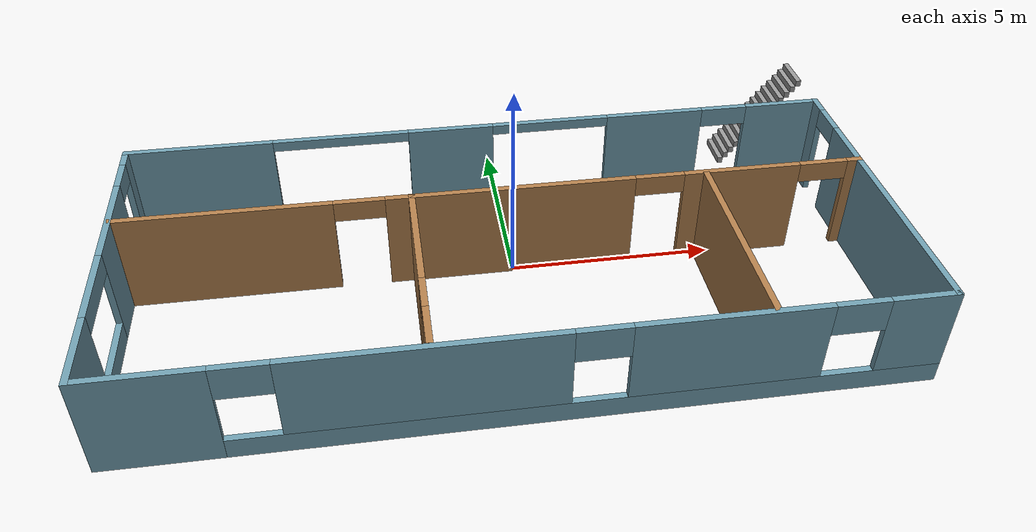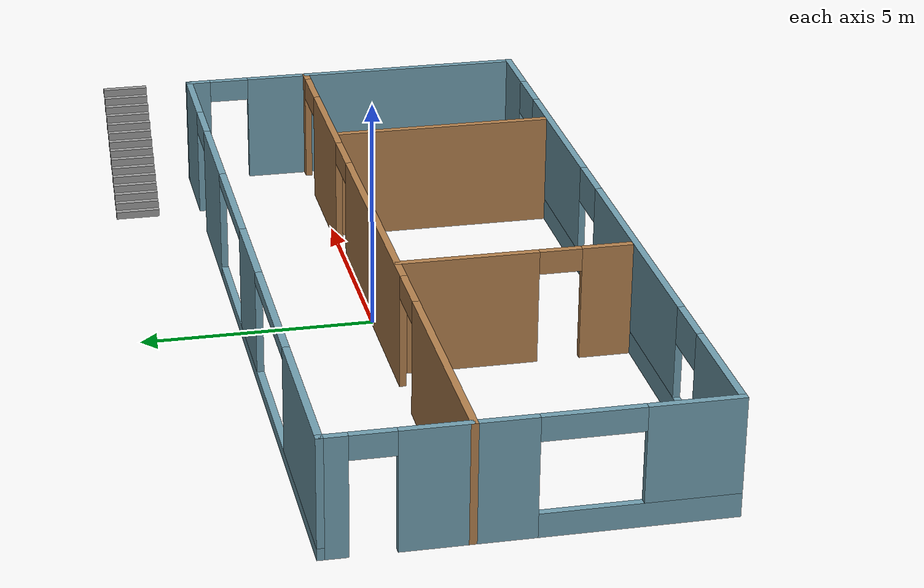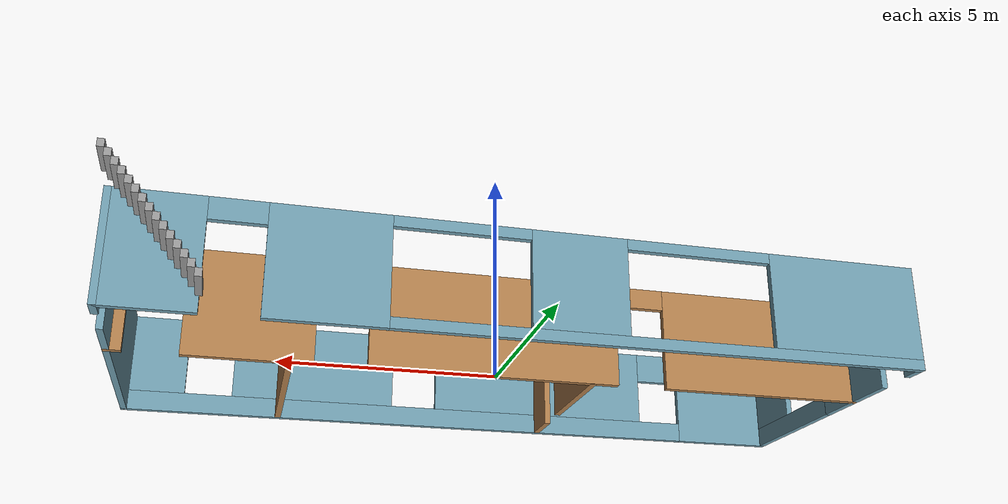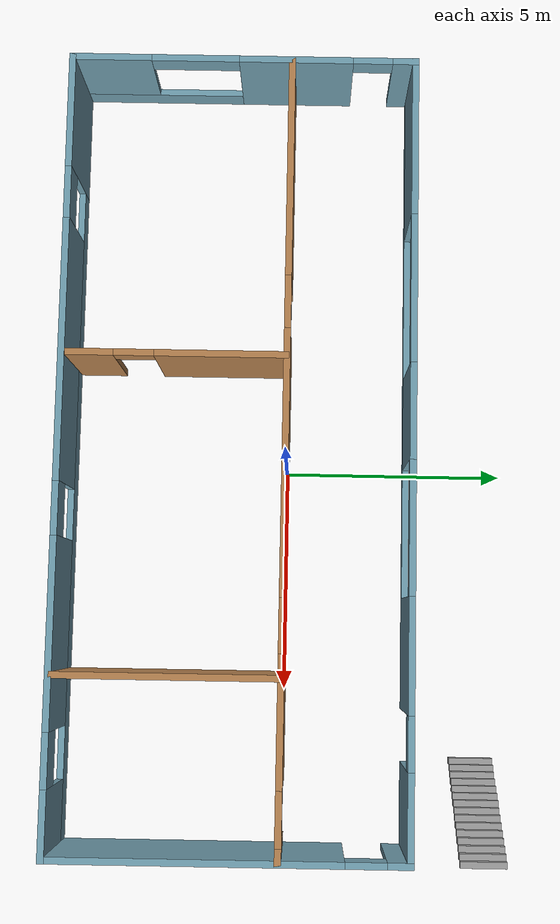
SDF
<?xml version='1.0'?>
<sdf version='1.6'>
  <model name='Marunouchi'>
    <pose frame=''>-0.353592 -0.155703 0 0 -0 0</pose>
    <link name='Stairs_0'>
      <visual name='Stairs_0_Visual_0'>
        <pose frame=''>6.94507 4.48526 0.083333 0 -0 1.5708</pose>
        <geometry>
          <box>
            <size>1 0.137349 0.166667</size>
          </box>
        </geometry>
        <material>
          <script>
            <uri>file://media/materials/scripts/gazebo.material</uri>
            <name>Gazebo/Grey</name>
          </script>
          <ambient>1 1 1 1</ambient>
        </material>
        <meta>
          <layer>0</layer>
        </meta>
      </visual>
      <collision name='Stairs_0_Collision_0'>
        <geometry>
          <box>
            <size>1 0.137349 0.166667</size>
          </box>
        </geometry>
        <pose frame=''>6.94507 4.48526 0.083333 0 -0 1.5708</pose>
      </collision>
      <visual name='Stairs_0_Visual_1'>
        <pose frame=''>7.08242 4.48526 0.25 0 -0 1.5708</pose>
        <geometry>
          <box>
            <size>1 0.137349 0.166667</size>
          </box>
        </geometry>
        <material>
          <script>
            <uri>file://media/materials/scripts/gazebo.material</uri>
            <name>Gazebo/Grey</name>
          </script>
          <ambient>1 1 1 1</ambient>
        </material>
        <meta>
          <layer>0</layer>
        </meta>
      </visual>
      <collision name='Stairs_0_Collision_1'>
        <geometry>
          <box>
            <size>1 0.137349 0.166667</size>
          </box>
        </geometry>
        <pose frame=''>7.08242 4.48526 0.25 0 -0 1.5708</pose>
      </collision>
      <visual name='Stairs_0_Visual_2'>
        <pose frame=''>7.21977 4.48526 0.416667 0 -0 1.5708</pose>
        <geometry>
          <box>
            <size>1 0.137349 0.166667</size>
          </box>
        </geometry>
        <material>
          <script>
            <uri>file://media/materials/scripts/gazebo.material</uri>
            <name>Gazebo/Grey</name>
          </script>
          <ambient>1 1 1 1</ambient>
        </material>
        <meta>
          <layer>0</layer>
        </meta>
      </visual>
      <collision name='Stairs_0_Collision_2'>
        <geometry>
          <box>
            <size>1 0.137349 0.166667</size>
          </box>
        </geometry>
        <pose frame=''>7.21977 4.48526 0.416667 0 -0 1.5708</pose>
      </collision>
      <visual name='Stairs_0_Visual_3'>
        <pose frame=''>7.35712 4.48526 0.583333 0 -0 1.5708</pose>
        <geometry>
          <box>
            <size>1 0.137349 0.166667</size>
          </box>
        </geometry>
        <material>
          <script>
            <uri>file://media/materials/scripts/gazebo.material</uri>
            <name>Gazebo/Grey</name>
          </script>
          <ambient>1 1 1 1</ambient>
        </material>
        <meta>
          <layer>0</layer>
        </meta>
      </visual>
      <collision name='Stairs_0_Collision_3'>
        <geometry>
          <box>
            <size>1 0.137349 0.166667</size>
          </box>
        </geometry>
        <pose frame=''>7.35712 4.48526 0.583333 0 -0 1.5708</pose>
      </collision>
      <visual name='Stairs_0_Visual_4'>
        <pose frame=''>7.49447 4.48526 0.75 0 -0 1.5708</pose>
        <geometry>
          <box>
            <size>1 0.137349 0.166667</size>
          </box>
        </geometry>
        <material>
          <script>
            <uri>file://media/materials/scripts/gazebo.material</uri>
            <name>Gazebo/Grey</name>
          </script>
          <ambient>1 1 1 1</ambient>
        </material>
        <meta>
          <layer>0</layer>
        </meta>
      </visual>
      <collision name='Stairs_0_Collision_4'>
        <geometry>
          <box>
            <size>1 0.137349 0.166667</size>
          </box>
        </geometry>
        <pose frame=''>7.49447 4.48526 0.75 0 -0 1.5708</pose>
      </collision>
      <visual name='Stairs_0_Visual_5'>
        <pose frame=''>7.63182 4.48526 0.916667 0 -0 1.5708</pose>
        <geometry>
          <box>
            <size>1 0.137349 0.166667</size>
          </box>
        </geometry>
        <material>
          <script>
            <uri>file://media/materials/scripts/gazebo.material</uri>
            <name>Gazebo/Grey</name>
          </script>
          <ambient>1 1 1 1</ambient>
        </material>
        <meta>
          <layer>0</layer>
        </meta>
      </visual>
      <collision name='Stairs_0_Collision_5'>
        <geometry>
          <box>
            <size>1 0.137349 0.166667</size>
          </box>
        </geometry>
        <pose frame=''>7.63182 4.48526 0.916667 0 -0 1.5708</pose>
      </collision>
      <visual name='Stairs_0_Visual_6'>
        <pose frame=''>7.76917 4.48526 1.08333 0 -0 1.5708</pose>
        <geometry>
          <box>
            <size>1 0.137349 0.166667</size>
          </box>
        </geometry>
        <material>
          <script>
            <uri>file://media/materials/scripts/gazebo.material</uri>
            <name>Gazebo/Grey</name>
          </script>
          <ambient>1 1 1 1</ambient>
        </material>
        <meta>
          <layer>0</layer>
        </meta>
      </visual>
      <collision name='Stairs_0_Collision_6'>
        <geometry>
          <box>
            <size>1 0.137349 0.166667</size>
          </box>
        </geometry>
        <pose frame=''>7.76917 4.48526 1.08333 0 -0 1.5708</pose>
      </collision>
      <visual name='Stairs_0_Visual_7'>
        <pose frame=''>7.90652 4.48526 1.25 0 -0 1.5708</pose>
        <geometry>
          <box>
            <size>1 0.137349 0.166667</size>
          </box>
        </geometry>
        <material>
          <script>
            <uri>file://media/materials/scripts/gazebo.material</uri>
            <name>Gazebo/Grey</name>
          </script>
          <ambient>1 1 1 1</ambient>
        </material>
        <meta>
          <layer>0</layer>
        </meta>
      </visual>
      <collision name='Stairs_0_Collision_7'>
        <geometry>
          <box>
            <size>1 0.137349 0.166667</size>
          </box>
        </geometry>
        <pose frame=''>7.90652 4.48526 1.25 0 -0 1.5708</pose>
      </collision>
      <visual name='Stairs_0_Visual_8'>
        <pose frame=''>8.04387 4.48526 1.41667 0 -0 1.5708</pose>
        <geometry>
          <box>
            <size>1 0.137349 0.166667</size>
          </box>
        </geometry>
        <material>
          <script>
            <uri>file://media/materials/scripts/gazebo.material</uri>
            <name>Gazebo/Grey</name>
          </script>
          <ambient>1 1 1 1</ambient>
        </material>
        <meta>
          <layer>0</layer>
        </meta>
      </visual>
      <collision name='Stairs_0_Collision_8'>
        <geometry>
          <box>
            <size>1 0.137349 0.166667</size>
          </box>
        </geometry>
        <pose frame=''>8.04387 4.48526 1.41667 0 -0 1.5708</pose>
      </collision>
      <visual name='Stairs_0_Visual_9'>
        <pose frame=''>8.18122 4.48526 1.58333 0 -0 1.5708</pose>
        <geometry>
          <box>
            <size>1 0.137349 0.166667</size>
          </box>
        </geometry>
        <material>
          <script>
            <uri>file://media/materials/scripts/gazebo.material</uri>
            <name>Gazebo/Grey</name>
          </script>
          <ambient>1 1 1 1</ambient>
        </material>
        <meta>
          <layer>0</layer>
        </meta>
      </visual>
      <collision name='Stairs_0_Collision_9'>
        <geometry>
          <box>
            <size>1 0.137349 0.166667</size>
          </box>
        </geometry>
        <pose frame=''>8.18122 4.48526 1.58333 0 -0 1.5708</pose>
      </collision>
      <visual name='Stairs_0_Visual_10'>
        <pose frame=''>8.31856 4.48526 1.75 0 -0 1.5708</pose>
        <geometry>
          <box>
            <size>1 0.137349 0.166667</size>
          </box>
        </geometry>
        <material>
          <script>
            <uri>file://media/materials/scripts/gazebo.material</uri>
            <name>Gazebo/Grey</name>
          </script>
          <ambient>1 1 1 1</ambient>
        </material>
        <meta>
          <layer>0</layer>
        </meta>
      </visual>
      <collision name='Stairs_0_Collision_10'>
        <geometry>
          <box>
            <size>1 0.137349 0.166667</size>
          </box>
        </geometry>
        <pose frame=''>8.31856 4.48526 1.75 0 -0 1.5708</pose>
      </collision>
      <visual name='Stairs_0_Visual_11'>
        <pose frame=''>8.45591 4.48526 1.91667 0 -0 1.5708</pose>
        <geometry>
          <box>
            <size>1 0.137349 0.166667</size>
          </box>
        </geometry>
        <material>
          <script>
            <uri>file://media/materials/scripts/gazebo.material</uri>
            <name>Gazebo/Grey</name>
          </script>
          <ambient>1 1 1 1</ambient>
        </material>
        <meta>
          <layer>0</layer>
        </meta>
      </visual>
      <collision name='Stairs_0_Collision_11'>
        <geometry>
          <box>
            <size>1 0.137349 0.166667</size>
          </box>
        </geometry>
        <pose frame=''>8.45591 4.48526 1.91667 0 -0 1.5708</pose>
      </collision>
      <visual name='Stairs_0_Visual_12'>
        <pose frame=''>8.59326 4.48526 2.08333 0 -0 1.5708</pose>
        <geometry>
          <box>
            <size>1 0.137349 0.166667</size>
          </box>
        </geometry>
        <material>
          <script>
            <uri>file://media/materials/scripts/gazebo.material</uri>
            <name>Gazebo/Grey</name>
          </script>
          <ambient>1 1 1 1</ambient>
        </material>
        <meta>
          <layer>0</layer>
        </meta>
      </visual>
      <collision name='Stairs_0_Collision_12'>
        <geometry>
          <box>
            <size>1 0.137349 0.166667</size>
          </box>
        </geometry>
        <pose frame=''>8.59326 4.48526 2.08333 0 -0 1.5708</pose>
      </collision>
      <visual name='Stairs_0_Visual_13'>
        <pose frame=''>8.73061 4.48526 2.25 0 -0 1.5708</pose>
        <geometry>
          <box>
            <size>1 0.137349 0.166667</size>
          </box>
        </geometry>
        <material>
          <script>
            <uri>file://media/materials/scripts/gazebo.material</uri>
            <name>Gazebo/Grey</name>
          </script>
          <ambient>1 1 1 1</ambient>
        </material>
        <meta>
          <layer>0</layer>
        </meta>
      </visual>
      <collision name='Stairs_0_Collision_13'>
        <geometry>
          <box>
            <size>1 0.137349 0.166667</size>
          </box>
        </geometry>
        <pose frame=''>8.73061 4.48526 2.25 0 -0 1.5708</pose>
      </collision>
      <visual name='Stairs_0_Visual_14'>
        <pose frame=''>8.86796 4.48526 2.41667 0 -0 1.5708</pose>
        <geometry>
          <box>
            <size>1 0.137349 0.166667</size>
          </box>
        </geometry>
        <material>
          <script>
            <uri>file://media/materials/scripts/gazebo.material</uri>
            <name>Gazebo/Grey</name>
          </script>
          <ambient>1 1 1 1</ambient>
        </material>
        <meta>
          <layer>0</layer>
        </meta>
      </visual>
      <collision name='Stairs_0_Collision_14'>
        <geometry>
          <box>
            <size>1 0.137349 0.166667</size>
          </box>
        </geometry>
        <pose frame=''>8.86796 4.48526 2.41667 0 -0 1.5708</pose>
      </collision>
    </link>
    <link name='Wall_10'>
      <pose frame=''>0 -4.91026 0 0 -0 0</pose>
      <visual name='Wall_10_Visual_0'>
        <pose frame=''>-7.66287 0 1.25 0 -0 0</pose>
        <geometry>
          <box>
            <size>2.67426 0.15 2.5</size>
          </box>
        </geometry>
        <material>
          <script>
            <uri>file://media/materials/scripts/gazebo.material</uri>
            <name>Gazebo/Grey</name>
          </script>
          <ambient>0.439216 0.619608 0.686275 1</ambient>
        </material>
        <meta>
          <layer>0</layer>
        </meta>
      </visual>
      <collision name='Wall_10_Collision_0'>
        <geometry>
          <box>
            <size>2.67426 0.15 2.5</size>
          </box>
        </geometry>
        <pose frame=''>-7.66287 0 1.25 0 -0 0</pose>
      </collision>
      <visual name='Wall_10_Visual_1'>
        <pose frame=''>1.33713 0 0.25 0 -0 0</pose>
        <geometry>
          <box>
            <size>15.3257 0.15 0.5</size>
          </box>
        </geometry>
        <material>
          <script>
            <uri>file://media/materials/scripts/gazebo.material</uri>
            <name>Gazebo/Grey</name>
          </script>
          <ambient>0.439216 0.619608 0.686275 1</ambient>
        </material>
        <meta>
          <layer>0</layer>
        </meta>
      </visual>
      <collision name='Wall_10_Collision_1'>
        <geometry>
          <box>
            <size>15.3257 0.15 0.5</size>
          </box>
        </geometry>
        <pose frame=''>1.33713 0 0.25 0 -0 0</pose>
      </collision>
      <visual name='Wall_10_Visual_2'>
        <pose frame=''>-2.14617 0 1.5 0 -0 0</pose>
        <geometry>
          <box>
            <size>5.95913 0.15 2</size>
          </box>
        </geometry>
        <material>
          <script>
            <uri>file://media/materials/scripts/gazebo.material</uri>
            <name>Gazebo/Grey</name>
          </script>
          <ambient>0.439216 0.619608 0.686275 1</ambient>
        </material>
        <meta>
          <layer>0</layer>
        </meta>
      </visual>
      <collision name='Wall_10_Collision_2'>
        <geometry>
          <box>
            <size>5.95913 0.15 2</size>
          </box>
        </geometry>
        <pose frame=''>-2.14617 0 1.5 0 -0 0</pose>
      </collision>
      <visual name='Wall_10_Visual_3'>
        <pose frame=''>4.14893 0 1.5 0 -0 0</pose>
        <geometry>
          <box>
            <size>4.23107 0.15 2</size>
          </box>
        </geometry>
        <material>
          <script>
            <uri>file://media/materials/scripts/gazebo.material</uri>
            <name>Gazebo/Grey</name>
          </script>
          <ambient>0.439216 0.619608 0.686275 1</ambient>
        </material>
        <meta>
          <layer>0</layer>
        </meta>
      </visual>
      <collision name='Wall_10_Collision_3'>
        <geometry>
          <box>
            <size>4.23107 0.15 2</size>
          </box>
        </geometry>
        <pose frame=''>4.14893 0 1.5 0 -0 0</pose>
      </collision>
      <visual name='Wall_10_Visual_4'>
        <pose frame=''>8.23223 0 1.5 0 -0 0</pose>
        <geometry>
          <box>
            <size>1.53554 0.15 2</size>
          </box>
        </geometry>
        <material>
          <script>
            <uri>file://media/materials/scripts/gazebo.material</uri>
            <name>Gazebo/Grey</name>
          </script>
          <ambient>0.439216 0.619608 0.686275 1</ambient>
        </material>
        <meta>
          <layer>0</layer>
        </meta>
      </visual>
      <collision name='Wall_10_Collision_4'>
        <geometry>
          <box>
            <size>1.53554 0.15 2</size>
          </box>
        </geometry>
        <pose frame=''>8.23223 0 1.5 0 -0 0</pose>
      </collision>
      <visual name='Wall_10_Visual_5'>
        <pose frame=''>-5.72574 0 2.1 0 -0 0</pose>
        <geometry>
          <box>
            <size>1.2 0.15 0.8</size>
          </box>
        </geometry>
        <material>
          <script>
            <uri>file://media/materials/scripts/gazebo.material</uri>
            <name>Gazebo/Grey</name>
          </script>
          <ambient>0.439216 0.619608 0.686275 1</ambient>
        </material>
        <meta>
          <layer>0</layer>
        </meta>
      </visual>
      <collision name='Wall_10_Collision_5'>
        <geometry>
          <box>
            <size>1.2 0.15 0.8</size>
          </box>
        </geometry>
        <pose frame=''>-5.72574 0 2.1 0 -0 0</pose>
      </collision>
      <visual name='Wall_10_Visual_6'>
        <pose frame=''>1.43339 0 2.1 0 -0 0</pose>
        <geometry>
          <box>
            <size>1.2 0.15 0.8</size>
          </box>
        </geometry>
        <material>
          <script>
            <uri>file://media/materials/scripts/gazebo.material</uri>
            <name>Gazebo/Grey</name>
          </script>
          <ambient>0.439216 0.619608 0.686275 1</ambient>
        </material>
        <meta>
          <layer>0</layer>
        </meta>
      </visual>
      <collision name='Wall_10_Collision_6'>
        <geometry>
          <box>
            <size>1.2 0.15 0.8</size>
          </box>
        </geometry>
        <pose frame=''>1.43339 0 2.1 0 -0 0</pose>
      </collision>
      <visual name='Wall_10_Visual_7'>
        <pose frame=''>6.86446 0 2.1 0 -0 0</pose>
        <geometry>
          <box>
            <size>1.2 0.15 0.8</size>
          </box>
        </geometry>
        <material>
          <script>
            <uri>file://media/materials/scripts/gazebo.material</uri>
            <name>Gazebo/Grey</name>
          </script>
          <ambient>0.439216 0.619608 0.686275 1</ambient>
        </material>
        <meta>
          <layer>0</layer>
        </meta>
      </visual>
      <collision name='Wall_10_Collision_7'>
        <geometry>
          <box>
            <size>1.2 0.15 0.8</size>
          </box>
        </geometry>
        <pose frame=''>6.86446 0 2.1 0 -0 0</pose>
      </collision>
    </link>
    <link name='Wall_11'>
      <pose frame=''>8.925 -0.985255 0 0 -0 1.5708</pose>
      <visual name='Wall_11_Visual_0'>
        <pose frame=''>-0.735069 0 1.25 0 -0 0</pose>
        <geometry>
          <box>
            <size>6.52986 0.15 2.5</size>
          </box>
        </geometry>
        <material>
          <script>
            <uri>file://media/materials/scripts/gazebo.material</uri>
            <name>Gazebo/Grey</name>
          </script>
          <ambient>0.439216 0.619608 0.686275 1</ambient>
        </material>
        <meta>
          <layer>0</layer>
        </meta>
      </visual>
      <collision name='Wall_11_Collision_0'>
        <geometry>
          <box>
            <size>6.52986 0.15 2.5</size>
          </box>
        </geometry>
        <pose frame=''>-0.735069 0 1.25 0 -0 0</pose>
      </collision>
      <visual name='Wall_11_Visual_1'>
        <pose frame=''>3.71493 0 1.25 0 -0 0</pose>
        <geometry>
          <box>
            <size>0.570139 0.15 2.5</size>
          </box>
        </geometry>
        <material>
          <script>
            <uri>file://media/materials/scripts/gazebo.material</uri>
            <name>Gazebo/Grey</name>
          </script>
          <ambient>0.439216 0.619608 0.686275 1</ambient>
        </material>
        <meta>
          <layer>0</layer>
        </meta>
      </visual>
      <collision name='Wall_11_Collision_1'>
        <geometry>
          <box>
            <size>0.570139 0.15 2.5</size>
          </box>
        </geometry>
        <pose frame=''>3.71493 0 1.25 0 -0 0</pose>
      </collision>
      <visual name='Wall_11_Visual_2'>
        <pose frame=''>2.97986 0 2.25 0 -0 0</pose>
        <geometry>
          <box>
            <size>0.9 0.15 0.5</size>
          </box>
        </geometry>
        <material>
          <script>
            <uri>file://media/materials/scripts/gazebo.material</uri>
            <name>Gazebo/Grey</name>
          </script>
          <ambient>0.439216 0.619608 0.686275 1</ambient>
        </material>
        <meta>
          <layer>0</layer>
        </meta>
      </visual>
      <collision name='Wall_11_Collision_2'>
        <geometry>
          <box>
            <size>0.9 0.15 0.5</size>
          </box>
        </geometry>
        <pose frame=''>2.97986 0 2.25 0 -0 0</pose>
      </collision>
    </link>
    <link name='Wall_12'>
      <pose frame=''>0 2.93974 0 0 -0 3.14159</pose>
      <visual name='Wall_12_Visual_0'>
        <pose frame=''>-7.99175 0 1.25 0 -0 0</pose>
        <geometry>
          <box>
            <size>2.01649 0.15 2.5</size>
          </box>
        </geometry>
        <material>
          <script>
            <uri>file://media/materials/scripts/gazebo.material</uri>
            <name>Gazebo/Grey</name>
          </script>
          <ambient>0.439216 0.619608 0.686275 1</ambient>
        </material>
        <meta>
          <layer>0</layer>
        </meta>
      </visual>
      <collision name='Wall_12_Collision_0'>
        <geometry>
          <box>
            <size>2.01649 0.15 2.5</size>
          </box>
        </geometry>
        <pose frame=''>-7.99175 0 1.25 0 -0 0</pose>
      </collision>
      <visual name='Wall_12_Visual_1'>
        <pose frame=''>-4.50891 0 1.25 0 -0 0</pose>
        <geometry>
          <box>
            <size>2.5492 0.15 2.5</size>
          </box>
        </geometry>
        <material>
          <script>
            <uri>file://media/materials/scripts/gazebo.material</uri>
            <name>Gazebo/Grey</name>
          </script>
          <ambient>0.439216 0.619608 0.686275 1</ambient>
        </material>
        <meta>
          <layer>0</layer>
        </meta>
      </visual>
      <collision name='Wall_12_Collision_1'>
        <geometry>
          <box>
            <size>2.5492 0.15 2.5</size>
          </box>
        </geometry>
        <pose frame=''>-4.50891 0 1.25 0 -0 0</pose>
      </collision>
      <visual name='Wall_12_Visual_2'>
        <pose frame=''>2.88285 0 0.125 0 -0 0</pose>
        <geometry>
          <box>
            <size>12.2343 0.15 0.25</size>
          </box>
        </geometry>
        <material>
          <script>
            <uri>file://media/materials/scripts/gazebo.material</uri>
            <name>Gazebo/Grey</name>
          </script>
          <ambient>0.439216 0.619608 0.686275 1</ambient>
        </material>
        <meta>
          <layer>0</layer>
        </meta>
      </visual>
      <collision name='Wall_12_Collision_2'>
        <geometry>
          <box>
            <size>12.2343 0.15 0.25</size>
          </box>
        </geometry>
        <pose frame=''>2.88285 0 0.125 0 -0 0</pose>
      </collision>
      <visual name='Wall_12_Visual_3'>
        <pose frame=''>0.85241 0 1.375 0 -0 0</pose>
        <geometry>
          <box>
            <size>2.17344 0.15 2.25</size>
          </box>
        </geometry>
        <material>
          <script>
            <uri>file://media/materials/scripts/gazebo.material</uri>
            <name>Gazebo/Grey</name>
          </script>
          <ambient>0.439216 0.619608 0.686275 1</ambient>
        </material>
        <meta>
          <layer>0</layer>
        </meta>
      </visual>
      <collision name='Wall_12_Collision_3'>
        <geometry>
          <box>
            <size>2.17344 0.15 2.25</size>
          </box>
        </geometry>
        <pose frame=''>0.85241 0 1.375 0 -0 0</pose>
      </collision>
      <visual name='Wall_12_Visual_4'>
        <pose frame=''>7.16956 0 1.375 0 -0 0</pose>
        <geometry>
          <box>
            <size>3.66087 0.15 2.25</size>
          </box>
        </geometry>
        <material>
          <script>
            <uri>file://media/materials/scripts/gazebo.material</uri>
            <name>Gazebo/Grey</name>
          </script>
          <ambient>0.439216 0.619608 0.686275 1</ambient>
        </material>
        <meta>
          <layer>0</layer>
        </meta>
      </visual>
      <collision name='Wall_12_Collision_4'>
        <geometry>
          <box>
            <size>3.66087 0.15 2.25</size>
          </box>
        </geometry>
        <pose frame=''>7.16956 0 1.375 0 -0 0</pose>
      </collision>
      <visual name='Wall_12_Visual_5'>
        <pose frame=''>-6.38351 0 2.25 0 -0 0</pose>
        <geometry>
          <box>
            <size>1.2 0.15 0.5</size>
          </box>
        </geometry>
        <material>
          <script>
            <uri>file://media/materials/scripts/gazebo.material</uri>
            <name>Gazebo/Grey</name>
          </script>
          <ambient>0.439216 0.619608 0.686275 1</ambient>
        </material>
        <meta>
          <layer>0</layer>
        </meta>
      </visual>
      <collision name='Wall_12_Collision_5'>
        <geometry>
          <box>
            <size>1.2 0.15 0.5</size>
          </box>
        </geometry>
        <pose frame=''>-6.38351 0 2.25 0 -0 0</pose>
      </collision>
      <visual name='Wall_12_Visual_6'>
        <pose frame=''>-1.73431 0 2.375 0 -0 0</pose>
        <geometry>
          <box>
            <size>3 0.15 0.25</size>
          </box>
        </geometry>
        <material>
          <script>
            <uri>file://media/materials/scripts/gazebo.material</uri>
            <name>Gazebo/Grey</name>
          </script>
          <ambient>0.439216 0.619608 0.686275 1</ambient>
        </material>
        <meta>
          <layer>0</layer>
        </meta>
      </visual>
      <collision name='Wall_12_Collision_6'>
        <geometry>
          <box>
            <size>3 0.15 0.25</size>
          </box>
        </geometry>
        <pose frame=''>-1.73431 0 2.375 0 -0 0</pose>
      </collision>
      <visual name='Wall_12_Visual_7'>
        <pose frame=''>3.63913 0 2.375 0 -0 0</pose>
        <geometry>
          <box>
            <size>3.4 0.15 0.25</size>
          </box>
        </geometry>
        <material>
          <script>
            <uri>file://media/materials/scripts/gazebo.material</uri>
            <name>Gazebo/Grey</name>
          </script>
          <ambient>0.439216 0.619608 0.686275 1</ambient>
        </material>
        <meta>
          <layer>0</layer>
        </meta>
      </visual>
      <collision name='Wall_12_Collision_7'>
        <geometry>
          <box>
            <size>3.4 0.15 0.25</size>
          </box>
        </geometry>
        <pose frame=''>3.63913 0 2.375 0 -0 0</pose>
      </collision>
    </link>
    <link name='Wall_16'>
      <pose frame=''>0 0.117811 0 0 -0 0</pose>
      <visual name='Wall_16_Visual_0'>
        <pose frame=''>-6.43825 0 1.25 0 -0 0</pose>
        <geometry>
          <box>
            <size>5.12351 0.15 2.5</size>
          </box>
        </geometry>
        <material>
          <script>
            <uri>file://media/materials/scripts/gazebo.material</uri>
            <name>Gazebo/Wood</name>
          </script>
          <ambient>1 1 1 1</ambient>
        </material>
        <meta>
          <layer>0</layer>
        </meta>
      </visual>
      <collision name='Wall_16_Collision_0'>
        <geometry>
          <box>
            <size>5.12351 0.15 2.5</size>
          </box>
        </geometry>
        <pose frame=''>-6.43825 0 1.25 0 -0 0</pose>
      </collision>
      <visual name='Wall_16_Visual_1'>
        <pose frame=''>0.315899 0 1.25 0 -0 0</pose>
        <geometry>
          <box>
            <size>5.98479 0.15 2.5</size>
          </box>
        </geometry>
        <material>
          <script>
            <uri>file://media/materials/scripts/gazebo.material</uri>
            <name>Gazebo/Wood</name>
          </script>
          <ambient>1 1 1 1</ambient>
        </material>
        <meta>
          <layer>0</layer>
        </meta>
      </visual>
      <collision name='Wall_16_Collision_1'>
        <geometry>
          <box>
            <size>5.98479 0.15 2.5</size>
          </box>
        </geometry>
        <pose frame=''>0.315899 0 1.25 0 -0 0</pose>
      </collision>
      <visual name='Wall_16_Visual_2'>
        <pose frame=''>5.95922 0 1.25 0 -0 0</pose>
        <geometry>
          <box>
            <size>2.90186 0.15 2.5</size>
          </box>
        </geometry>
        <material>
          <script>
            <uri>file://media/materials/scripts/gazebo.material</uri>
            <name>Gazebo/Wood</name>
          </script>
          <ambient>1 1 1 1</ambient>
        </material>
        <meta>
          <layer>0</layer>
        </meta>
      </visual>
      <collision name='Wall_16_Collision_2'>
        <geometry>
          <box>
            <size>2.90186 0.15 2.5</size>
          </box>
        </geometry>
        <pose frame=''>5.95922 0 1.25 0 -0 0</pose>
      </collision>
      <visual name='Wall_16_Visual_3'>
        <pose frame=''>8.80508 0 1.25 0 -0 0</pose>
        <geometry>
          <box>
            <size>0.38985 0.15 2.5</size>
          </box>
        </geometry>
        <material>
          <script>
            <uri>file://media/materials/scripts/gazebo.material</uri>
            <name>Gazebo/Wood</name>
          </script>
          <ambient>1 1 1 1</ambient>
        </material>
        <meta>
          <layer>0</layer>
        </meta>
      </visual>
      <collision name='Wall_16_Collision_3'>
        <geometry>
          <box>
            <size>0.38985 0.15 2.5</size>
          </box>
        </geometry>
        <pose frame=''>8.80508 0 1.25 0 -0 0</pose>
      </collision>
      <visual name='Wall_16_Visual_4'>
        <pose frame=''>-3.27649 0 2.25 0 -0 0</pose>
        <geometry>
          <box>
            <size>1.2 0.15 0.5</size>
          </box>
        </geometry>
        <material>
          <script>
            <uri>file://media/materials/scripts/gazebo.material</uri>
            <name>Gazebo/Wood</name>
          </script>
          <ambient>1 1 1 1</ambient>
        </material>
        <meta>
          <layer>0</layer>
        </meta>
      </visual>
      <collision name='Wall_16_Collision_4'>
        <geometry>
          <box>
            <size>1.2 0.15 0.5</size>
          </box>
        </geometry>
        <pose frame=''>-3.27649 0 2.25 0 -0 0</pose>
      </collision>
      <visual name='Wall_16_Visual_5'>
        <pose frame=''>3.90829 0 2.25 0 -0 0</pose>
        <geometry>
          <box>
            <size>1.2 0.15 0.5</size>
          </box>
        </geometry>
        <material>
          <script>
            <uri>file://media/materials/scripts/gazebo.material</uri>
            <name>Gazebo/Wood</name>
          </script>
          <ambient>1 1 1 1</ambient>
        </material>
        <meta>
          <layer>0</layer>
        </meta>
      </visual>
      <collision name='Wall_16_Collision_5'>
        <geometry>
          <box>
            <size>1.2 0.15 0.5</size>
          </box>
        </geometry>
        <pose frame=''>3.90829 0 2.25 0 -0 0</pose>
      </collision>
      <visual name='Wall_16_Visual_6'>
        <pose frame=''>8.01015 0 2.25 0 -0 0</pose>
        <geometry>
          <box>
            <size>1.2 0.15 0.5</size>
          </box>
        </geometry>
        <material>
          <script>
            <uri>file://media/materials/scripts/gazebo.material</uri>
            <name>Gazebo/Wood</name>
          </script>
          <ambient>1 1 1 1</ambient>
        </material>
        <meta>
          <layer>0</layer>
        </meta>
      </visual>
      <collision name='Wall_16_Collision_6'>
        <geometry>
          <box>
            <size>1.2 0.15 0.5</size>
          </box>
        </geometry>
        <pose frame=''>8.01015 0 2.25 0 -0 0</pose>
      </collision>
    </link>
    <link name='Wall_20'>
      <collision name='Wall_20_Collision'>
        <geometry>
          <box>
            <size>5 0.15 2.5</size>
          </box>
        </geometry>
        <pose frame=''>0 0 1.25 0 -0 0</pose>
      </collision>
      <visual name='Wall_20_Visual'>
        <pose frame=''>0 0 1.25 0 -0 0</pose>
        <geometry>
          <box>
            <size>5 0.15 2.5</size>
          </box>
        </geometry>
        <material>
          <script>
            <uri>file://media/materials/scripts/gazebo.material</uri>
            <name>Gazebo/Wood</name>
          </script>
          <ambient>1 1 1 1</ambient>
        </material>
        <meta>
          <layer>0</layer>
        </meta>
      </visual>
      <pose frame=''>5.04589 -2.39971 0 0 0 -1.5708</pose>
    </link>
    <link name='Wall_22'>
      <pose frame=''>-2.05521 -2.33032 0 0 0 -1.5708</pose>
      <visual name='Wall_22_Visual_0'>
        <pose frame=''>-0.992463 0 1.25 0 -0 0</pose>
        <geometry>
          <box>
            <size>3.01507 0.15 2.5</size>
          </box>
        </geometry>
        <material>
          <script>
            <uri>file://media/materials/scripts/gazebo.material</uri>
            <name>Gazebo/Wood</name>
          </script>
          <ambient>1 1 1 1</ambient>
        </material>
        <meta>
          <layer>0</layer>
        </meta>
      </visual>
      <collision name='Wall_22_Collision_0'>
        <geometry>
          <box>
            <size>3.01507 0.15 2.5</size>
          </box>
        </geometry>
        <pose frame=''>-0.992463 0 1.25 0 -0 0</pose>
      </collision>
      <visual name='Wall_22_Visual_1'>
        <pose frame=''>1.95754 0 1.25 0 -0 0</pose>
        <geometry>
          <box>
            <size>1.08493 0.15 2.5</size>
          </box>
        </geometry>
        <material>
          <script>
            <uri>file://media/materials/scripts/gazebo.material</uri>
            <name>Gazebo/Wood</name>
          </script>
          <ambient>1 1 1 1</ambient>
        </material>
        <meta>
          <layer>0</layer>
        </meta>
      </visual>
      <collision name='Wall_22_Collision_1'>
        <geometry>
          <box>
            <size>1.08493 0.15 2.5</size>
          </box>
        </geometry>
        <pose frame=''>1.95754 0 1.25 0 -0 0</pose>
      </collision>
      <visual name='Wall_22_Visual_2'>
        <pose frame=''>0.965074 0 2.25 0 -0 0</pose>
        <geometry>
          <box>
            <size>0.9 0.15 0.5</size>
          </box>
        </geometry>
        <material>
          <script>
            <uri>file://media/materials/scripts/gazebo.material</uri>
            <name>Gazebo/Wood</name>
          </script>
          <ambient>1 1 1 1</ambient>
        </material>
        <meta>
          <layer>0</layer>
        </meta>
      </visual>
      <collision name='Wall_22_Collision_2'>
        <geometry>
          <box>
            <size>0.9 0.15 0.5</size>
          </box>
        </geometry>
        <pose frame=''>0.965074 0 2.25 0 -0 0</pose>
      </collision>
    </link>
    <link name='Wall_9'>
      <pose frame=''>-8.925 -0.985255 0 0 0 -1.5708</pose>
      <visual name='Wall_9_Visual_0'>
        <pose frame=''>-3.6996 0 1.25 0 -0 0</pose>
        <geometry>
          <box>
            <size>0.600805 0.15 2.5</size>
          </box>
        </geometry>
        <material>
          <script>
            <uri>file://media/materials/scripts/gazebo.material</uri>
            <name>Gazebo/Grey</name>
          </script>
          <ambient>0.439216 0.619608 0.686275 1</ambient>
        </material>
        <meta>
          <layer>0</layer>
        </meta>
      </visual>
      <collision name='Wall_9_Collision_0'>
        <geometry>
          <box>
            <size>0.600805 0.15 2.5</size>
          </box>
        </geometry>
        <pose frame=''>-3.6996 0 1.25 0 -0 0</pose>
      </collision>
      <visual name='Wall_9_Visual_1'>
        <pose frame=''>-1.19188 0 1.25 0 -0 0</pose>
        <geometry>
          <box>
            <size>2.61463 0.15 2.5</size>
          </box>
        </geometry>
        <material>
          <script>
            <uri>file://media/materials/scripts/gazebo.material</uri>
            <name>Gazebo/Grey</name>
          </script>
          <ambient>0.439216 0.619608 0.686275 1</ambient>
        </material>
        <meta>
          <layer>0</layer>
        </meta>
      </visual>
      <collision name='Wall_9_Collision_1'>
        <geometry>
          <box>
            <size>2.61463 0.15 2.5</size>
          </box>
        </geometry>
        <pose frame=''>-1.19188 0 1.25 0 -0 0</pose>
      </collision>
      <visual name='Wall_9_Visual_2'>
        <pose frame=''>2.05772 0 0.25 0 -0 0</pose>
        <geometry>
          <box>
            <size>3.88456 0.15 0.5</size>
          </box>
        </geometry>
        <material>
          <script>
            <uri>file://media/materials/scripts/gazebo.material</uri>
            <name>Gazebo/Grey</name>
          </script>
          <ambient>0.439216 0.619608 0.686275 1</ambient>
        </material>
        <meta>
          <layer>0</layer>
        </meta>
      </visual>
      <collision name='Wall_9_Collision_2'>
        <geometry>
          <box>
            <size>3.88456 0.15 0.5</size>
          </box>
        </geometry>
        <pose frame=''>2.05772 0 0.25 0 -0 0</pose>
      </collision>
      <visual name='Wall_9_Visual_3'>
        <pose frame=''>3.05772 0 1.5 0 -0 0</pose>
        <geometry>
          <box>
            <size>1.88456 0.15 2</size>
          </box>
        </geometry>
        <material>
          <script>
            <uri>file://media/materials/scripts/gazebo.material</uri>
            <name>Gazebo/Grey</name>
          </script>
          <ambient>0.439216 0.619608 0.686275 1</ambient>
        </material>
        <meta>
          <layer>0</layer>
        </meta>
      </visual>
      <collision name='Wall_9_Collision_3'>
        <geometry>
          <box>
            <size>1.88456 0.15 2</size>
          </box>
        </geometry>
        <pose frame=''>3.05772 0 1.5 0 -0 0</pose>
      </collision>
      <visual name='Wall_9_Visual_4'>
        <pose frame=''>-2.9492 0 2.25 0 -0 0</pose>
        <geometry>
          <box>
            <size>0.9 0.15 0.5</size>
          </box>
        </geometry>
        <material>
          <script>
            <uri>file://media/materials/scripts/gazebo.material</uri>
            <name>Gazebo/Grey</name>
          </script>
          <ambient>0.439216 0.619608 0.686275 1</ambient>
        </material>
        <meta>
          <layer>0</layer>
        </meta>
      </visual>
      <collision name='Wall_9_Collision_4'>
        <geometry>
          <box>
            <size>0.9 0.15 0.5</size>
          </box>
        </geometry>
        <pose frame=''>-2.9492 0 2.25 0 -0 0</pose>
      </collision>
      <visual name='Wall_9_Visual_5'>
        <pose frame=''>1.11544 0 2.25 0 -0 0</pose>
        <geometry>
          <box>
            <size>2 0.15 0.5</size>
          </box>
        </geometry>
        <material>
          <script>
            <uri>file://media/materials/scripts/gazebo.material</uri>
            <name>Gazebo/Grey</name>
          </script>
          <ambient>0.439216 0.619608 0.686275 1</ambient>
        </material>
        <meta>
          <layer>0</layer>
        </meta>
      </visual>
      <collision name='Wall_9_Collision_5'>
        <geometry>
          <box>
            <size>2 0.15 0.5</size>
          </box>
        </geometry>
        <pose frame=''>1.11544 0 2.25 0 -0 0</pose>
      </collision>
    </link>
    <static>1</static>
  </model>
</sdf>
